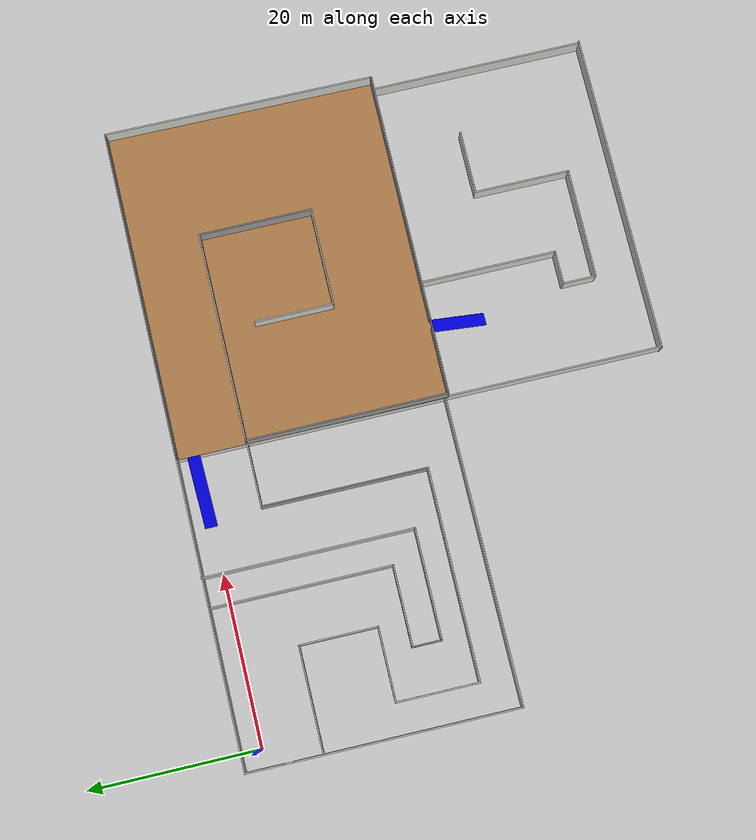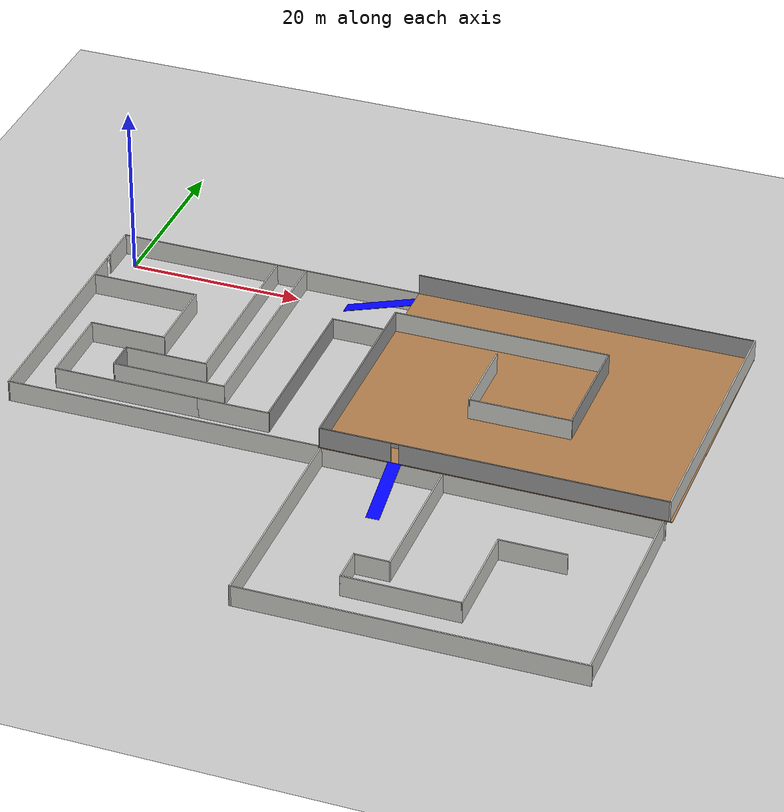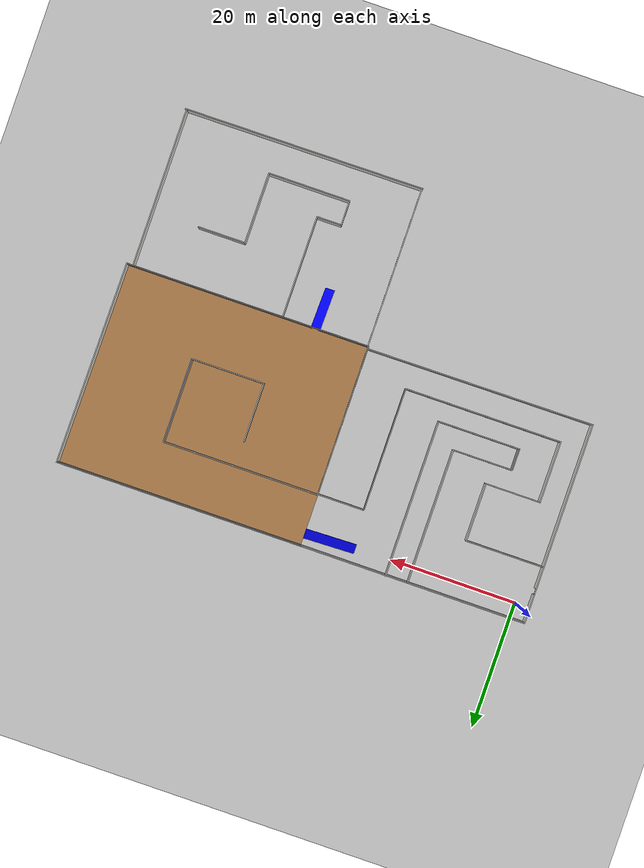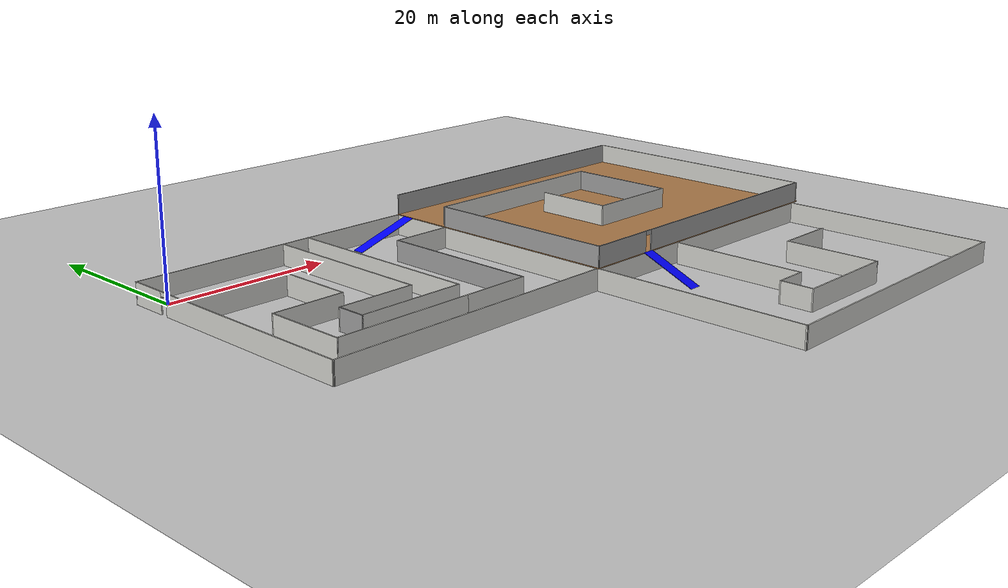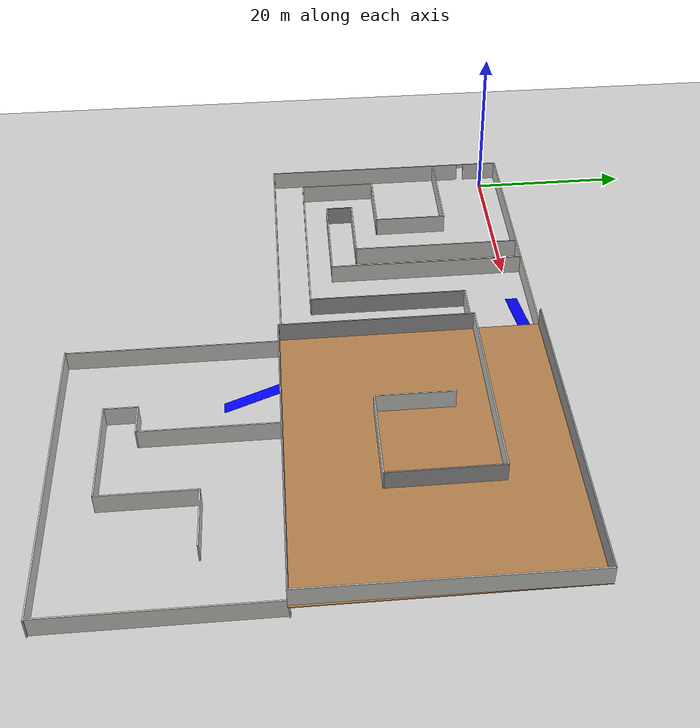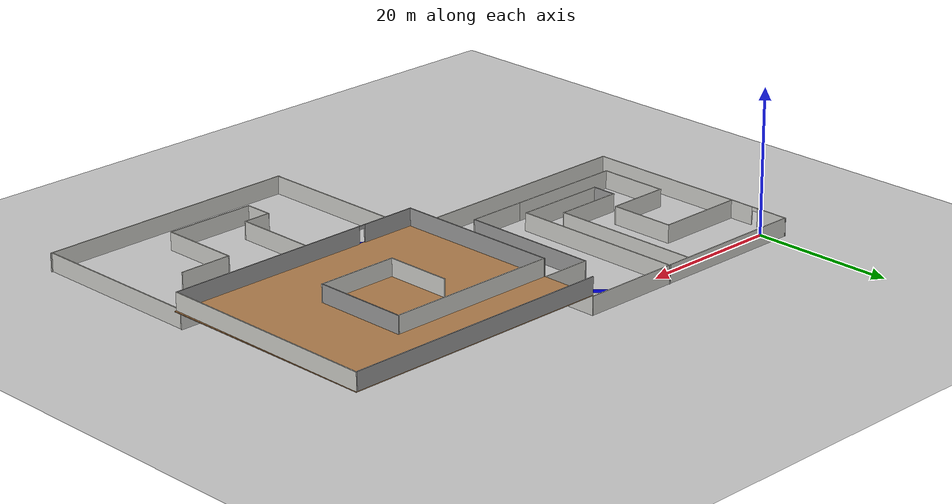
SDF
<sdf version="1.6">
 <world name="default">
  <light name="sun" type="directional">
   <pose>0 0 10 0 -0 0</pose>
   <diffuse>0.8 0.8 0.8 1</diffuse>
   <specular>0.1 0.1 0.1 1</specular>
   <attenuation>
    <range>1000</range>
    <constant>0.9</constant>
    <linear>0.01</linear>
    <quadratic>0.001</quadratic>
   </attenuation>
   <direction>-0.5 0.5 -1</direction>
  </light>
  <model name="ground_plane">
   <static>1</static>
   <link name="link">
    <collision name="collision">
     <geometry><plane><normal>0 0 1</normal><size>100 100</size></plane></geometry>
     <surface><friction><ode><mu>100</mu><mu2>50</mu2></ode></friction></surface>
    </collision>
    <visual name="visual">
     <cast_shadows>0</cast_shadows>
     <geometry><plane><normal>0 0 1</normal><size>100 100</size></plane></geometry>
     <material>
      <script><uri>file://media/materials/scripts/gazebo.material</uri><name>Gazebo/Grey</name></script>
     </material>
    </visual>
   </link>
  </model>
  <gravity>0 0 -9.8</gravity>
  <magnetic_field>6e-06 2.3e-05 -4.2e-05</magnetic_field>
  <atmosphere type="adiabatic"/>
  <physics name="default_physics" default="0" type="ode">
   <max_step_size>0.001</max_step_size>
   <real_time_factor>1</real_time_factor>
   <real_time_update_rate>1000</real_time_update_rate>
  </physics>
  <scene><ambient>0.4 0.4 0.4 1</ambient><background>0.7 0.7 0.7 1</background><shadows>1</shadows></scene>
  <spherical_coordinates>
   <surface_model>EARTH_WGS84</surface_model>
   <latitude_deg>0</latitude_deg>
   <longitude_deg>0</longitude_deg>
   <elevation>0</elevation>
   <heading_deg>0</heading_deg>
  </spherical_coordinates>
  <model name="Surround_2_levels">
   <pose>35.0286 -26.1148 0 0 -0 0</pose>
   <link name="Floor_1">
    <collision name="Floor_1_Collision">
     <geometry><box><size>38.5579 31.6083 0.1</size></box></geometry>
     <pose>0 0 0.05 0 -0 0</pose>
    </collision>
    <visual name="Floor_1_Visual">
     <pose>0 0 0.05 0 -0 0</pose>
     <geometry><box><size>38.5579 31.6083 0.1</size></box></geometry>
     <material>
      <script><uri>file://media/materials/scripts/gazebo.material</uri><name>Gazebo/Wood</name></script>
      <ambient>1 1 1 1</ambient>
     </material>
    </visual>
    <pose>17.8862 12.4724 2.5 0 -0 0</pose>
   </link>
   <link name="Wall_101">
    <collision name="Wall_101_Collision">
     <geometry><box><size>16 0.15 2.5</size></box></geometry>
     <pose>0 0 1.25 0 -0 0</pose>
    </collision>
    <visual name="Wall_101_Visual">
     <pose>0 0 1.25 0 -0 0</pose>
     <geometry><box><size>16 0.15 2.5</size></box></geometry>
     <material>
      <script><uri>file://media/materials/scripts/gazebo.material</uri><name>Gazebo/CeilingTiled</name></script>
      <ambient>1 1 1 1</ambient>
     </material>
    </visual>
    <pose>12.3955 -11.3883 0 0 0 -1.5708</pose>
   </link>
   <link name="Wall_102">
    <collision name="Wall_102_Collision">
     <geometry><box><size>4 0.15 2.5</size></box></geometry>
     <pose>0 0 1.25 0 -0 0</pose>
    </collision>
    <visual name="Wall_102_Visual">
     <pose>0 0 1.25 0 -0 0</pose>
     <geometry><box><size>4 0.15 2.5</size></box></geometry>
     <material>
      <script><uri>file://media/materials/scripts/gazebo.material</uri><name>Gazebo/CeilingTiled</name></script>
      <ambient>1 1 1 1</ambient>
     </material>
    </visual>
    <pose>10.4705 -19.3133 0 0 -0 3.14159</pose>
   </link>
   <link name="Wall_103">
    <collision name="Wall_103_Collision">
     <geometry><box><size>4 0.15 2.5</size></box></geometry>
     <pose>0 0 1.25 0 -0 0</pose>
    </collision>
    <visual name="Wall_103_Visual">
     <pose>0 0 1.25 0 -0 0</pose>
     <geometry><box><size>4 0.15 2.5</size></box></geometry>
     <material>
      <script><uri>file://media/materials/scripts/gazebo.material</uri><name>Gazebo/CeilingTiled</name></script>
      <ambient>1 1 1 1</ambient>
     </material>
    </visual>
    <pose>8.54553 -21.2383 0 0 0 -1.5708</pose>
   </link>
   <link name="Wall_104">
    <collision name="Wall_104_Collision">
     <geometry><box><size>13 0.15 2.5</size></box></geometry>
     <pose>0 0 1.25 0 -0 0</pose>
    </collision>
    <visual name="Wall_104_Visual">
     <pose>0 0 1.25 0 -0 0</pose>
     <geometry><box><size>13 0.15 2.5</size></box></geometry>
     <material>
      <script><uri>file://media/materials/scripts/gazebo.material</uri><name>Gazebo/CeilingTiled</name></script>
      <ambient>1 1 1 1</ambient>
     </material>
    </visual>
    <pose>14.9705 -23.1633 0 0 -0 0</pose>
   </link>
   <link name="Wall_105">
    <collision name="Wall_105_Collision">
     <geometry><box><size>11.25 0.15 2.5</size></box></geometry>
     <pose>0 0 1.25 0 -0 0</pose>
    </collision>
    <visual name="Wall_105_Visual">
     <pose>0 0 1.25 0 -0 0</pose>
     <geometry><box><size>11.25 0.15 2.5</size></box></geometry>
     <material>
      <script><uri>file://media/materials/scripts/gazebo.material</uri><name>Gazebo/CeilingTiled</name></script>
      <ambient>1 1 1 1</ambient>
     </material>
    </visual>
    <pose>21.3955 -17.6133 0 0 -0 1.5708</pose>
   </link>
   <link name="Wall_106">
    <collision name="Wall_106_Collision">
     <geometry><box><size>7.5 0.15 2.5</size></box></geometry>
     <pose>0 0 1.25 0 -0 0</pose>
    </collision>
    <visual name="Wall_106_Visual">
     <pose>0 0 1.25 0 -0 0</pose>
     <geometry><box><size>7.5 0.15 2.5</size></box></geometry>
     <material>
      <script><uri>file://media/materials/scripts/gazebo.material</uri><name>Gazebo/CeilingTiled</name></script>
      <ambient>1 1 1 1</ambient>
     </material>
    </visual>
    <pose>25.0705 -12.0633 0 0 -0 0</pose>
   </link>
   <link name="Wall_110">
    <collision name="Wall_110_Collision">
     <geometry><box><size>23.5639 0.15 2.5</size></box></geometry>
     <pose>0 0 1.25 0 -0 0</pose>
    </collision>
    <visual name="Wall_110_Visual">
     <pose>0 0 1.25 0 -0 0</pose>
     <geometry><box><size>23.5639 0.15 2.5</size></box></geometry>
     <material>
      <script><uri>file://media/materials/scripts/gazebo.material</uri><name>Gazebo/Grey</name></script>
      <ambient>1 1 1 1</ambient>
     </material>
    </visual>
    <pose>-1.29066 8.47315 2.5 0 -0 1.5731</pose>
   </link>
   <link name="Wall_31">
    <collision name="Wall_31_Collision">
     <geometry><box><size>12.25 0.15 2.5</size></box></geometry>
     <pose>0 0 1.25 0 -0 0</pose>
    </collision>
    <visual name="Wall_31_Visual">
     <pose>0 0 1.25 0 -0 0</pose>
     <geometry><box><size>12.25 0.15 2.5</size></box></geometry>
     <material>
      <script><uri>file://media/materials/scripts/gazebo.material</uri><name>Gazebo/CeilingTiled</name></script>
      <ambient>1 1 1 1</ambient>
     </material>
    </visual>
    <pose>-30.8176 19.5301 0 0 -0 0</pose>
   </link>
   <link name="Wall_32">
    <collision name="Wall_32_Collision">
     <geometry><box><size>9.25 0.15 2.5</size></box></geometry>
     <pose>0 0 1.25 0 -0 0</pose>
    </collision>
    <visual name="Wall_32_Visual">
     <pose>0 0 1.25 0 -0 0</pose>
     <geometry><box><size>9.25 0.15 2.5</size></box></geometry>
     <material>
      <script><uri>file://media/materials/scripts/gazebo.material</uri><name>Gazebo/CeilingTiled</name></script>
      <ambient>1 1 1 1</ambient>
     </material>
    </visual>
    <pose>-24.7676 14.9801 0 0 0 -1.5708</pose>
   </link>
   <link name="Wall_36">
    <collision name="Wall_36_Collision">
     <geometry><box><size>8.75 0.15 2.5</size></box></geometry>
     <pose>0 0 1.25 0 -0 0</pose>
    </collision>
    <visual name="Wall_36_Visual">
     <pose>0 0 1.25 0 -0 0</pose>
     <geometry><box><size>8.75 0.15 2.5</size></box></geometry>
     <material>
      <script><uri>file://media/materials/scripts/gazebo.material</uri><name>Gazebo/CeilingTiled</name></script>
      <ambient>1 1 1 1</ambient>
     </material>
    </visual>
    <pose>-29.0676 10.4301 0 0 -0 3.14159</pose>
   </link>
   <link name="Wall_37">
    <collision name="Wall_37_Collision">
     <geometry><box><size>9.75 0.15 2.5</size></box></geometry>
     <pose>0 0 1.25 0 -0 0</pose>
    </collision>
    <visual name="Wall_37_Visual">
     <pose>0 0 1.25 0 -0 0</pose>
     <geometry><box><size>9.75 0.15 2.5</size></box></geometry>
     <material>
      <script><uri>file://media/materials/scripts/gazebo.material</uri><name>Gazebo/CeilingTiled</name></script>
      <ambient>1 1 1 1</ambient>
     </material>
    </visual>
    <pose>-33.3676 5.63008 0 0 0 -1.5708</pose>
   </link>
   <link name="Wall_38">
    <collision name="Wall_38_Collision">
     <geometry><box><size>16.75 0.15 2.5</size></box></geometry>
     <pose>0 0 1.25 0 -0 0</pose>
    </collision>
    <visual name="Wall_38_Visual">
     <pose>0 0 1.25 0 -0 0</pose>
     <geometry><box><size>16.75 0.15 2.5</size></box></geometry>
     <material>
      <script><uri>file://media/materials/scripts/gazebo.material</uri><name>Gazebo/CeilingTiled</name></script>
      <ambient>1 1 1 1</ambient>
     </material>
    </visual>
    <pose>-25.0676 0.83008 0 0 -0 0</pose>
   </link>
   <link name="Wall_39">
    <collision name="Wall_39_Collision">
     <geometry><box><size>8.25 0.15 2.5</size></box></geometry>
     <pose>0 0 1.25 0 -0 0</pose>
    </collision>
    <visual name="Wall_39_Visual">
     <pose>0 0 1.25 0 -0 0</pose>
     <geometry><box><size>8.25 0.15 2.5</size></box></geometry>
     <material>
      <script><uri>file://media/materials/scripts/gazebo.material</uri><name>Gazebo/CeilingTiled</name></script>
      <ambient>1 1 1 1</ambient>
     </material>
    </visual>
    <pose>-12.7176 0.83008 0 0 -0 0</pose>
   </link>
   <link name="Wall_40">
    <collision name="Wall_40_Collision">
     <geometry><box><size>19.5 0.15 2.5</size></box></geometry>
     <pose>0 0 1.25 0 -0 0</pose>
    </collision>
    <visual name="Wall_40_Visual">
     <pose>0 0 1.25 0 -0 0</pose>
     <geometry><box><size>19.5 0.15 2.5</size></box></geometry>
     <material>
      <script><uri>file://media/materials/scripts/gazebo.material</uri><name>Gazebo/Grey</name></script>
      <ambient>1 1 1 1</ambient>
     </material>
    </visual>
    <pose>-8.66764 10.5051 0 0 -0 1.5708</pose>
   </link>
   <link name="Wall_41">
    <collision name="Wall_41_Collision">
     <geometry><box><size>7.5 0.15 2.5</size></box></geometry>
     <pose>0 0 1.25 0 -0 0</pose>
    </collision>
    <visual name="Wall_41_Visual">
     <pose>0 0 1.25 0 -0 0</pose>
     <geometry><box><size>7.5 0.15 2.5</size></box></geometry>
     <material>
      <script><uri>file://media/materials/scripts/gazebo.material</uri><name>Gazebo/CeilingTiled</name></script>
      <ambient>1 1 1 1</ambient>
     </material>
    </visual>
    <pose>-4.99264 20.1801 0 0 -0 0</pose>
   </link>
   <link name="Wall_43">
    <collision name="Wall_43_Collision">
     <geometry><box><size>21.25 0.15 2.5</size></box></geometry>
     <pose>0 0 1.25 0 -0 0</pose>
    </collision>
    <visual name="Wall_43_Visual">
     <pose>0 0 1.25 0 -0 0</pose>
     <geometry><box><size>21.25 0.15 2.5</size></box></geometry>
     <material>
      <script><uri>file://media/materials/scripts/gazebo.material</uri><name>Gazebo/CeilingTiled</name></script>
      <ambient>1 1 1 1</ambient>
     </material>
    </visual>
    <pose>-18.4838 17.7652 0 0 0 -1.5708</pose>
   </link>
   <link name="Wall_44">
    <collision name="Wall_44_Collision">
     <geometry><box><size>9.5 0.15 2.5</size></box></geometry>
     <pose>0 0 1.25 0 -0 0</pose>
    </collision>
    <visual name="Wall_44_Visual">
     <pose>0 0 1.25 0 -0 0</pose>
     <geometry><box><size>9.5 0.15 2.5</size></box></geometry>
     <material>
      <script><uri>file://media/materials/scripts/gazebo.material</uri><name>Gazebo/CeilingTiled</name></script>
      <ambient>1 1 1 1</ambient>
     </material>
    </visual>
    <pose>-23.1588 7.21519 0 0 -0 3.14159</pose>
   </link>
   <link name="Wall_45">
    <collision name="Wall_45_Collision">
     <geometry><box><size>3.5 0.15 2.5</size></box></geometry>
     <pose>0 0 1.25 0 -0 0</pose>
    </collision>
    <visual name="Wall_45_Visual">
     <pose>0 0 1.25 0 -0 0</pose>
     <geometry><box><size>3.5 0.15 2.5</size></box></geometry>
     <material>
      <script><uri>file://media/materials/scripts/gazebo.material</uri><name>Gazebo/Grey</name></script>
      <ambient>1 1 1 1</ambient>
     </material>
    </visual>
    <pose>-27.8338 5.54019 0 0 0 -1.5708</pose>
   </link>
   <link name="Wall_46">
    <collision name="Wall_46_Collision">
     <geometry><box><size>13 0.15 2.5</size></box></geometry>
     <pose>0 0 1.25 0 -0 0</pose>
    </collision>
    <visual name="Wall_46_Visual">
     <pose>0 0 1.25 0 -0 0</pose>
     <geometry><box><size>13 0.15 2.5</size></box></geometry>
     <material>
      <script><uri>file://media/materials/scripts/gazebo.material</uri><name>Gazebo/CeilingTiled</name></script>
      <ambient>1 1 1 1</ambient>
     </material>
    </visual>
    <pose>-21.4088 3.86519 0 0 -0 0</pose>
   </link>
   <link name="Wall_47">
    <collision name="Wall_47_Collision">
     <geometry><box><size>24.75 0.15 2.5</size></box></geometry>
     <pose>0 0 1.25 0 -0 0</pose>
    </collision>
    <visual name="Wall_47_Visual">
     <pose>0 0 1.25 0 -0 0</pose>
     <geometry><box><size>24.75 0.15 2.5</size></box></geometry>
     <material>
      <script><uri>file://media/materials/scripts/gazebo.material</uri><name>Gazebo/CeilingTiled</name></script>
      <ambient>1 1 1 1</ambient>
     </material>
    </visual>
    <pose>-14.9838 16.1652 0 0 -0 1.5708</pose>
   </link>
   <link name="Wall_5">
    <pose>-37.0898 12.6252 0 0 -0 1.5708</pose>
    <visual name="Wall_5_Visual_0">
     <pose>-2.75715 0 1.25 0 -0 0</pose>
     <geometry><box><size>26.2357 0.15 2.5</size></box></geometry>
     <material>
      <script><uri>file://media/materials/scripts/gazebo.material</uri><name>Gazebo/CeilingTiled</name></script>
      <ambient>1 1 1 1</ambient>
     </material>
    </visual>
    <collision name="Wall_5_Collision_0">
     <geometry><box><size>26.2357 0.15 2.5</size></box></geometry>
     <pose>-2.75715 0 1.25 0 -0 0</pose>
    </collision>
    <visual name="Wall_5_Visual_1">
     <pose>13.5678 0 1.25 0 -0 0</pose>
     <geometry><box><size>4.6143 0.15 2.5</size></box></geometry>
     <material>
      <script><uri>file://media/materials/scripts/gazebo.material</uri><name>Gazebo/CeilingTiled</name></script>
      <ambient>1 1 1 1</ambient>
     </material>
    </visual>
    <collision name="Wall_5_Collision_1">
     <geometry><box><size>4.6143 0.15 2.5</size></box></geometry>
     <pose>13.5678 0 1.25 0 -0 0</pose>
    </collision>
    <visual name="Wall_5_Visual_2">
     <pose>10.8107 0 2.25 0 -0 0</pose>
     <geometry><box><size>0.9 0.15 0.5</size></box></geometry>
     <material>
      <script><uri>file://media/materials/scripts/gazebo.material</uri><name>Gazebo/CeilingTiled</name></script>
      <ambient>1 1 1 1</ambient>
     </material>
    </visual>
    <collision name="Wall_5_Collision_2">
     <geometry><box><size>0.9 0.15 0.5</size></box></geometry>
     <pose>10.8107 0 2.25 0 -0 0</pose>
    </collision>
   </link>
   <link name="Wall_50">
    <collision name="Wall_50_Collision">
     <geometry><box><size>31.6081 0.15 2.5</size></box></geometry>
     <pose>0 0 1.25 0 -0 0</pose>
    </collision>
    <visual name="Wall_50_Visual">
     <pose>0 0 1.25 0 -0 0</pose>
     <geometry><box><size>31.6081 0.15 2.5</size></box></geometry>
     <material>
      <script><uri>file://media/materials/scripts/gazebo.material</uri><name>Gazebo/CeilingTiled</name></script>
      <ambient>1 1 1 1</ambient>
     </material>
    </visual>
    <pose>36.9656 12.4724 2.5 0 0 -1.57868</pose>
   </link>
   <link name="Wall_67">
    <collision name="Wall_67_Collision">
     <geometry><box><size>24.5 0.15 2.5</size></box></geometry>
     <pose>0 0 1.25 0 -0 0</pose>
    </collision>
    <visual name="Wall_67_Visual">
     <pose>0 0 1.25 0 -0 0</pose>
     <geometry><box><size>24.5 0.15 2.5</size></box></geometry>
     <material>
      <script><uri>file://media/materials/scripts/gazebo.material</uri><name>Gazebo/CeilingTiled</name></script>
      <ambient>1 1 1 1</ambient>
     </material>
    </visual>
    <pose>10.8574 20.1801 2.5 0 -0 0</pose>
   </link>
   <link name="Wall_68">
    <collision name="Wall_68_Collision">
     <geometry><box><size>13.25 0.15 2.5</size></box></geometry>
     <pose>0 0 1.25 0 -0 0</pose>
    </collision>
    <visual name="Wall_68_Visual">
     <pose>0 0 1.25 0 -0 0</pose>
     <geometry><box><size>13.25 0.15 2.5</size></box></geometry>
     <material>
      <script><uri>file://media/materials/scripts/gazebo.material</uri><name>Gazebo/Grey</name></script>
      <ambient>1 1 1 1</ambient>
     </material>
    </visual>
    <pose>23.0324 13.6301 2.5 0 0 -1.5708</pose>
   </link>
   <link name="Wall_69">
    <collision name="Wall_69_Collision">
     <geometry><box><size>11.5 0.15 2.5</size></box></geometry>
     <pose>0 0 1.25 0 -0 0</pose>
    </collision>
    <visual name="Wall_69_Visual">
     <pose>0 0 1.25 0 -0 0</pose>
     <geometry><box><size>11.5 0.15 2.5</size></box></geometry>
     <material>
      <script><uri>file://media/materials/scripts/gazebo.material</uri><name>Gazebo/CeilingTiled</name></script>
      <ambient>1 1 1 1</ambient>
     </material>
    </visual>
    <pose>17.3574 7.08008 2.5 0 -0 3.14159</pose>
   </link>
   <link name="Wall_7">
    <collision name="Wall_7_Collision">
     <geometry><box><size>31.5 0.15 2.5</size></box></geometry>
     <pose>0 0 1.25 0 -0 0</pose>
    </collision>
    <visual name="Wall_7_Visual">
     <pose>0 0 1.25 0 -0 0</pose>
     <geometry><box><size>31.5 0.15 2.5</size></box></geometry>
     <material>
      <script><uri>file://media/materials/scripts/gazebo.material</uri><name>Gazebo/CeilingTiled</name></script>
      <ambient>1 1 1 1</ambient>
     </material>
    </visual>
    <pose>-1.25605 12.6845 0 0 0 -1.5708</pose>
   </link>
   <link name="Wall_70">
    <collision name="Wall_70_Collision">
     <geometry><box><size>9.25 0.15 2.5</size></box></geometry>
     <pose>0 0 1.25 0 -0 0</pose>
    </collision>
    <visual name="Wall_70_Visual">
     <pose>0 0 1.25 0 -0 0</pose>
     <geometry><box><size>9.25 0.15 2.5</size></box></geometry>
     <material>
      <script><uri>file://media/materials/scripts/gazebo.material</uri><name>Gazebo/CeilingTiled</name></script>
      <ambient>1 1 1 1</ambient>
     </material>
    </visual>
    <pose>11.6824 11.6301 2.5 0 -0 1.5708</pose>
   </link>
   <link name="Wall_86">
    <collision name="Wall_86_Collision">
     <geometry><box><size>38.4704 0.15 2.5</size></box></geometry>
     <pose>0 0 1.25 0 -0 0</pose>
    </collision>
    <visual name="Wall_86_Visual">
     <pose>0 0 1.25 0 -0 0</pose>
     <geometry><box><size>38.4704 0.15 2.5</size></box></geometry>
     <material>
      <script><uri>file://media/materials/scripts/gazebo.material</uri><name>Gazebo/Grey</name></script>
      <ambient>1 1 1 1</ambient>
     </material>
    </visual>
    <pose>17.848 28.2011 2.5 0 0 -8e-06</pose>
   </link>
   <link name="Wall_89">
    <pose>17.7863 -3.23379 2.5 0 -0 0</pose>
    <visual name="Wall_89_Visual_0">
     <pose>-15.1344 0 1.25 0 -0 0</pose>
     <geometry><box><size>7.98127 0.15 2.5</size></box></geometry>
     <material>
      <script><uri>file://media/materials/scripts/gazebo.material</uri><name>Gazebo/Grey</name></script>
      <ambient>1 1 1 1</ambient>
     </material>
    </visual>
    <collision name="Wall_89_Collision_0">
     <geometry><box><size>7.98127 0.15 2.5</size></box></geometry>
     <pose>-15.1344 0 1.25 0 -0 0</pose>
    </collision>
    <visual name="Wall_89_Visual_1">
     <pose>4.44064 0 1.25 0 -0 0</pose>
     <geometry><box><size>29.3687 0.15 2.5</size></box></geometry>
     <material>
      <script><uri>file://media/materials/scripts/gazebo.material</uri><name>Gazebo/Grey</name></script>
      <ambient>1 1 1 1</ambient>
     </material>
    </visual>
    <collision name="Wall_89_Collision_1">
     <geometry><box><size>29.3687 0.15 2.5</size></box></geometry>
     <pose>4.44064 0 1.25 0 -0 0</pose>
    </collision>
    <visual name="Wall_89_Visual_2">
     <pose>-10.6937 0 2.25 0 -0 0</pose>
     <geometry><box><size>0.9 0.15 0.5</size></box></geometry>
     <material>
      <script><uri>file://media/materials/scripts/gazebo.material</uri><name>Gazebo/Grey</name></script>
      <ambient>1 1 1 1</ambient>
     </material>
    </visual>
    <collision name="Wall_89_Collision_2">
     <geometry><box><size>0.9 0.15 0.5</size></box></geometry>
     <pose>-10.6937 0 2.25 0 -0 0</pose>
    </collision>
   </link>
   <link name="Wall_91">
    <collision name="Wall_91_Collision">
     <geometry><box><size>35.9839 0.15 2.5</size></box></geometry>
     <pose>0 0 1.25 0 -0 0</pose>
    </collision>
    <visual name="Wall_91_Visual">
     <pose>0 0 1.25 0 -0 0</pose>
     <geometry><box><size>35.9839 0.15 2.5</size></box></geometry>
     <material>
      <script><uri>file://media/materials/scripts/gazebo.material</uri><name>Gazebo/CeilingTiled</name></script>
      <ambient>1 1 1 1</ambient>
     </material>
    </visual>
    <pose>-19.1729 28.3924 0 0 0 -0.001832</pose>
   </link>
   <link name="Wall_94">
    <collision name="Wall_94_Collision">
     <geometry><box><size>35.9843 0.15 2.5</size></box></geometry>
     <pose>0 0 1.25 0 -0 0</pose>
    </collision>
    <visual name="Wall_94_Visual">
     <pose>0 0 1.25 0 -0 0</pose>
     <geometry><box><size>35.9843 0.15 2.5</size></box></geometry>
     <material>
      <script><uri>file://media/materials/scripts/gazebo.material</uri><name>Gazebo/CeilingTiled</name></script>
      <ambient>1 1 1 1</ambient>
     </material>
    </visual>
    <pose>-19.1729 -3.08265 0 0 -0 0.005145</pose>
   </link>
   <link name="Wall_96">
    <collision name="Wall_96_Collision">
     <geometry><box><size>37.7901 0.15 2.5</size></box></geometry>
     <pose>0 0 1.25 0 -0 0</pose>
    </collision>
    <visual name="Wall_96_Visual">
     <pose>0 0 1.25 0 -0 0</pose>
     <geometry><box><size>37.7901 0.15 2.5</size></box></geometry>
     <material>
      <script><uri>file://media/materials/scripts/gazebo.material</uri><name>Gazebo/CeilingTiled</name></script>
      <ambient>1 1 1 1</ambient>
     </material>
    </visual>
    <pose>17.5638 -3.0723 0 0 0 -0.004348</pose>
   </link>
   <link name="Wall_97">
    <collision name="Wall_97_Collision">
     <geometry><box><size>25.25 0.15 2.5</size></box></geometry>
     <pose>0 0 1.25 0 -0 0</pose>
    </collision>
    <visual name="Wall_97_Visual">
     <pose>0 0 1.25 0 -0 0</pose>
     <geometry><box><size>25.25 0.15 2.5</size></box></geometry>
     <material>
      <script><uri>file://media/materials/scripts/gazebo.material</uri><name>Gazebo/CeilingTiled</name></script>
      <ambient>1 1 1 1</ambient>
     </material>
    </visual>
    <pose>36.22 -15.7041 0 0 0 -1.5708</pose>
   </link>
   <link name="Wall_98">
    <collision name="Wall_98_Collision">
     <geometry><box><size>37.8196 0.15 2.5</size></box></geometry>
     <pose>0 0 1.25 0 -0 0</pose>
    </collision>
    <visual name="Wall_98_Visual">
     <pose>0 0 1.25 0 -0 0</pose>
     <geometry><box><size>37.8196 0.15 2.5</size></box></geometry>
     <material>
      <script><uri>file://media/materials/scripts/gazebo.material</uri><name>Gazebo/CeilingTiled</name></script>
      <ambient>1 1 1 1</ambient>
     </material>
    </visual>
    <pose>17.5491 -28.3595 0 0 0 -3.136</pose>
   </link>
   <link name="Wall_99">
    <collision name="Wall_99_Collision">
     <geometry><box><size>25.5 0.15 2.5</size></box></geometry>
     <pose>0 0 1.25 0 -0 0</pose>
    </collision>
    <visual name="Wall_99_Visual">
     <pose>0 0 1.25 0 -0 0</pose>
     <geometry><box><size>25.5 0.15 2.5</size></box></geometry>
     <material>
      <script><uri>file://media/materials/scripts/gazebo.material</uri><name>Gazebo/CeilingTiled</name></script>
      <ambient>1 1 1 1</ambient>
     </material>
    </visual>
    <pose>-1.19182 -15.7898 0 0 -0 1.5708</pose>
   </link>
   <static>1</static>
  </model>
  <model name="ramp_0">
   <link name="link">
    <pose>-1.6738 -0.738858 1.05171 0.000999 0.391218 -3.13169</pose>
    <inertial>
     <mass>1.52594</mass>
     <inertia><ixx>0.104223</ixx><ixy>0</ixy><ixz>0</ixz><iyy>3.42934</iyy><iyz>0</iyz><izz>3.53335</izz></inertia>
    </inertial>
    <visual name="visual">
     <geometry><box><size>8.42274 1.46761 0.046883</size></box></geometry>
     <material>
      <script><name>Gazebo/Grey</name><uri>file://media/materials/scripts/gazebo.material</uri></script>
      <ambient>0 0 1 1</ambient>
      <diffuse>0.7 0.7 0.7 1</diffuse>
      <specular>0.01 0.01 0.01 1</specular>
      <emissive>0 0 0 1</emissive>
      <shader type="vertex"><normal_map>__default__</normal_map></shader>
     </material>
    </visual>
    <collision name="collision">
     <geometry><box><size>8.42274 1.46761 0.046883</size></box></geometry>
     <surface>
      <friction>
       <ode><mu>1</mu><mu2>1</mu2><fdir1>0 0 0</fdir1><slip1>0</slip1><slip2>0</slip2></ode>
       <torsional>
        <coefficient>1</coefficient>
        <patch_radius>0</patch_radius>
        <surface_radius>0</surface_radius>
        <use_patch_radius>1</use_patch_radius>
        <ode><slip>0</slip></ode>
       </torsional>
      </friction>
      <bounce><restitution_coefficient>0</restitution_coefficient><threshold>1e+06</threshold></bounce>
      <contact>
       <collide_without_contact>0</collide_without_contact>
       <collide_without_contact_bitmask>1</collide_without_contact_bitmask>
       <collide_bitmask>1</collide_bitmask>
       <ode>
        <soft_cfm>0</soft_cfm>
        <soft_erp>0.2</soft_erp>
        <kp>1e+13</kp>
        <kd>1</kd>
        <max_vel>0.01</max_vel>
        <min_depth>0</min_depth>
       </ode>
       <bullet>
        <split_impulse>1</split_impulse>
        <split_impulse_penetration_threshold>-0.01</split_impulse_penetration_threshold>
        <soft_cfm>0</soft_cfm>
        <soft_erp>0.2</soft_erp>
        <kp>1e+13</kp>
        <kd>1</kd>
       </bullet>
      </contact>
     </surface>
    </collision>
   </link>
   <static>0</static>
   <pose>31.1781 0.950363 0.07107 -0.005306 0.090468 -0.002963</pose>
  </model>
  <model name="ramp_1">
   <link name="link">
    <pose>-1.6738 -0.738858 1.05171 0.000999 0.391218 -3.13169</pose>
    <inertial>
     <mass>1.52594</mass>
     <inertia><ixx>0.104223</ixx><ixy>0</ixy><ixz>0</ixz><iyy>3.42934</iyy><iyz>0</iyz><izz>3.53335</izz></inertia>
    </inertial>
    <gravity>0</gravity>
    <visual name="visual">
     <geometry><box><size>8.42274 1.46761 0.046883</size></box></geometry>
     <material>
      <script><name>Gazebo/Grey</name><uri>file://media/materials/scripts/gazebo.material</uri></script>
      <ambient>0 0 1 1</ambient>
      <diffuse>0.7 0.7 0.7 1</diffuse>
      <specular>0.01 0.01 0.01 1</specular>
      <emissive>0 0 0 1</emissive>
      <shader type="vertex"><normal_map>__default__</normal_map></shader>
     </material>
    </visual>
    <collision name="collision">
     <geometry><box><size>8.42274 1.46761 0.046883</size></box></geometry>
     <surface>
      <friction>
       <ode><mu>1</mu><mu2>1</mu2><fdir1>0 0 0</fdir1><slip1>0</slip1><slip2>0</slip2></ode>
       <torsional>
        <coefficient>1</coefficient>
        <patch_radius>0</patch_radius>
        <surface_radius>0</surface_radius>
        <use_patch_radius>1</use_patch_radius>
        <ode><slip>0</slip></ode>
       </torsional>
      </friction>
      <bounce><restitution_coefficient>0</restitution_coefficient><threshold>1e+06</threshold></bounce>
      <contact>
       <collide_without_contact>0</collide_without_contact>
       <collide_without_contact_bitmask>1</collide_without_contact_bitmask>
       <collide_bitmask>1</collide_bitmask>
       <ode>
        <soft_cfm>0</soft_cfm>
        <soft_erp>0.2</soft_erp>
        <kp>1e+13</kp>
        <kd>1</kd>
        <max_vel>0.01</max_vel>
        <min_depth>0</min_depth>
       </ode>
       <bullet>
        <split_impulse>1</split_impulse>
        <split_impulse_penetration_threshold>-0.01</split_impulse_penetration_threshold>
        <soft_cfm>0</soft_cfm>
        <soft_erp>0.2</soft_erp>
        <kp>1e+13</kp>
        <kd>1</kd>
       </bullet>
      </contact>
     </surface>
    </collision>
   </link>
   <static>0</static>
   <pose>41.3511 -31.6407 -0.074261 0.013442 -0.000623 1.55458</pose>
  </model>
 </world>
</sdf>
